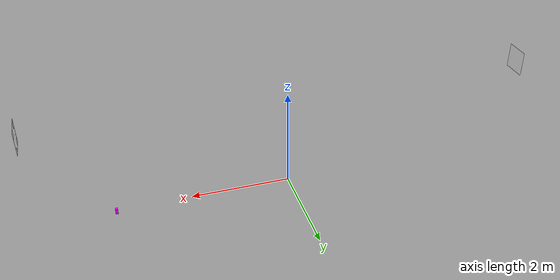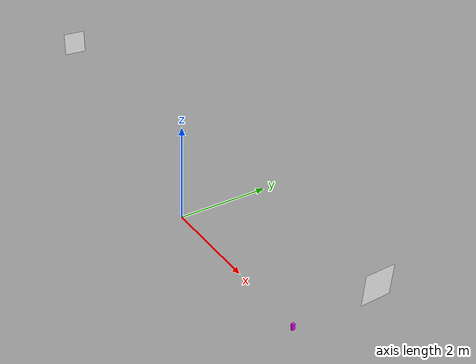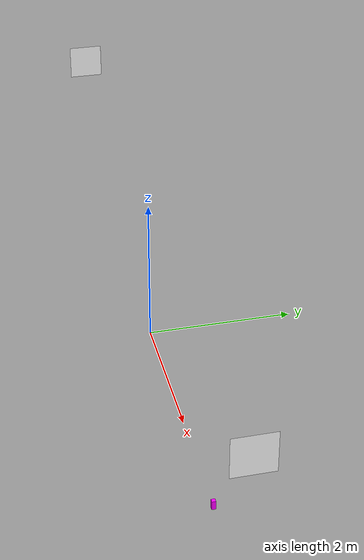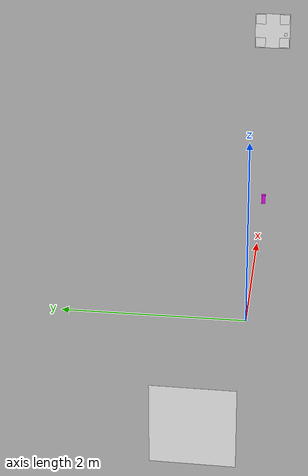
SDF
<sdf version="1.9">
 <world name="default">
  <plugin filename="gz-sim-physics-system" name="gz::sim::systems::Physics"/>
  <plugin filename="gz-sim-user-commands-system" name="gz::sim::systems::UserCommands"/>
  <plugin filename="gz-sim-scene-broadcaster-system" name="gz::sim::systems::SceneBroadcaster"/>
  <plugin filename="gz-sim-sensors-system" name="gz::sim::systems::Sensors">
   <render_engine>ogre2</render_engine>
  </plugin>
  <plugin filename="gz-sim-imu-system" name="gz::sim::systems::Imu"/>
  <plugin filename="gz-sim-navsat-system" name="gz::sim::systems::NavSat"/>
  <plugin filename="gz-sim-air-pressure-system" name="gz::sim::systems::AirPressure"/>
  <plugin filename="gz-sim-magnetometer-system" name="gz::sim::systems::Magnetometer"/>
  <magnetic_field>6.0e-06 2.3e-05 -4.2e-05</magnetic_field>
  <atmosphere type="adiabatic"/>
  <spherical_coordinates>
   <surface_model>EARTH_WGS84</surface_model>
   <latitude_deg>37.5</latitude_deg>
   <longitude_deg>126.9</longitude_deg>
   <elevation>0.0</elevation>
  </spherical_coordinates>
  <physics type="ode">
   <max_step_size>0.004</max_step_size>
   <real_time_factor>1.0</real_time_factor>
   <real_time_update_rate>250</real_time_update_rate>
  </physics>
  <gravity>0 0 -9.8</gravity>
  <scene>
   <grid>false</grid>
   <ambient>0.6 0.6 0.6 1</ambient>
   <background>0.3 0.3 0.3 1</background>
   <shadows>false</shadows>
  </scene>
  <model name="invisible_floor">
   <static>true</static>
   <pose>0 0 -0.1 0 0 0</pose>
   <link name="link">
    <collision name="collision">
     <geometry><plane><normal>0 0 1</normal><size>100 100</size></plane></geometry>
    </collision>
   </link>
  </model>
  <light name="sunUTC" type="directional">
   <pose>0 0 500 0 -0 0</pose>
   <cast_shadows>false</cast_shadows>
   <intensity>1</intensity>
   <direction>0.001 0.625 -0.78</direction>
   <diffuse>0.904 0.904 0.904 1</diffuse>
   <specular>0.271 0.271 0.271 1</specular>
  </light>
  <include><uri>model://arucotag</uri><name>marker_0</name><pose>5.0 0 2.0 0 1.57 3.14</pose></include>
  <include><uri>model://arucotag_1</uri><name>marker_1</name><pose>-5.0 0 2.0 0 1.57 0</pose></include>
  <model name="target_box">
   <pose>3.5 0 0 0 0 0</pose>
   <link name="box_link">
    <inertial><mass>0.05</mass><inertia><ixx>0.0001</ixx><iyy>0.0001</iyy><izz>0.0001</izz></inertia></inertial>
    <collision name="collision">
     <geometry><box><size>0.05 0.05 0.12</size></box></geometry>
     <surface><friction><ode><mu>2.0</mu><mu2>2.0</mu2></ode></friction></surface>
    </collision>
    <visual name="visual">
     <geometry><box><size>0.05 0.05 0.12</size></box></geometry>
     <material><ambient>1 0 1 1</ambient><diffuse>1 0 1 1</diffuse></material>
    </visual>
   </link>
  </model>
 </world>
</sdf>

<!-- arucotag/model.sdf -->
<sdf version='1.9'>
  <model name='arucotag'>
    <static>true</static>
    <pose>0 0 0.001 0 0 0</pose>
    <link name='base'>
      <visual name='background_visual'>
        <geometry>
          <plane>
            <normal>0 0 1</normal>
            <size>0.5 0.5</size>
          </plane>
        </geometry>
        <material>
          <diffuse>1 1 1 1</diffuse>
          <specular>0.2 0.2 0.2 1</specular>
        </material>
      </visual>
      <visual name='tag_0_visual'>
        <pose>0.17 0.17 0.0002 0 0 0</pose>
        <geometry>
          <plane>
            <normal>0 0 1</normal>
            <size>0.14 0.14</size>
          </plane>
        </geometry>
        <material>
          <diffuse>1 1 1 1</diffuse>
          <specular>0.4 0.4 0.4 1</specular>
          <pbr>
            <metal>
              <albedo_map>model://arucotag/aruco_0.png</albedo_map>
            </metal>
          </pbr>
        </material>
      </visual>
      <visual name='tag_1_visual'>
        <pose>-0.17 0.17 0.0002 0 0 0</pose>
        <geometry>
          <plane>
            <normal>0 0 1</normal>
            <size>0.14 0.14</size>
          </plane>
        </geometry>
        <material>
          <diffuse>1 1 1 1</diffuse>
          <specular>0.4 0.4 0.4 1</specular>
          <pbr>
            <metal>
              <albedo_map>model://arucotag/aruco_1.png</albedo_map>
            </metal>
          </pbr>
        </material>
      </visual>
      <visual name='tag_2_visual'>
        <pose>-0.17 -0.17 0.0002 0 0 0</pose>
        <geometry>
          <plane>
            <normal>0 0 1</normal>
            <size>0.14 0.14</size>
          </plane>
        </geometry>
        <material>
          <diffuse>1 1 1 1</diffuse>
          <specular>0.4 0.4 0.4 1</specular>
          <pbr>
            <metal>
              <albedo_map>model://arucotag/aruco_2.png</albedo_map>
            </metal>
          </pbr>
        </material>
      </visual>
      <visual name='tag_3_visual'>
        <pose>0.17 -0.17 0.0002 0 0 0</pose>
        <geometry>
          <plane>
            <normal>0 0 1</normal>
            <size>0.14 0.14</size>
          </plane>
        </geometry>
        <material>
          <diffuse>1 1 1 1</diffuse>
          <specular>0.4 0.4 0.4 1</specular>
          <pbr>
            <metal>
              <albedo_map>model://arucotag/aruco_3.png</albedo_map>
            </metal>
          </pbr>
        </material>
      </visual>
      <visual name='tag_4_visual'>
        <pose>0.0 0.11 0.0002 0 0 0</pose>
        <geometry>
          <plane>
            <normal>0 0 1</normal>
            <size>0.07 0.07</size>
          </plane>
        </geometry>
        <material>
          <diffuse>1 1 1 1</diffuse>
          <specular>0.4 0.4 0.4 1</specular>
          <pbr>
            <metal>
              <albedo_map>model://arucotag/aruco_4.png</albedo_map>
            </metal>
          </pbr>
        </material>
      </visual>
      <visual name='tag_5_visual'>
        <pose>-0.11 0.0 0.0002 0 0 0</pose>
        <geometry>
          <plane>
            <normal>0 0 1</normal>
            <size>0.07 0.07</size>
          </plane>
        </geometry>
        <material>
          <diffuse>1 1 1 1</diffuse>
          <specular>0.4 0.4 0.4 1</specular>
          <pbr>
            <metal>
              <albedo_map>model://arucotag/aruco_5.png</albedo_map>
            </metal>
          </pbr>
        </material>
      </visual>
      <visual name='tag_6_visual'>
        <pose>0.0 -0.11 0.0002 0 0 0</pose>
        <geometry>
          <plane>
            <normal>0 0 1</normal>
            <size>0.07 0.07</size>
          </plane>
        </geometry>
        <material>
          <diffuse>1 1 1 1</diffuse>
          <specular>0.4 0.4 0.4 1</specular>
          <pbr>
            <metal>
              <albedo_map>model://arucotag/aruco_6.png</albedo_map>
            </metal>
          </pbr>
        </material>
      </visual>
      <visual name='tag_7_visual'>
        <pose>0.11 0.0 0.0002 0 0 0</pose>
        <geometry>
          <plane>
            <normal>0 0 1</normal>
            <size>0.07 0.07</size>
          </plane>
        </geometry>
        <material>
          <diffuse>1 1 1 1</diffuse>
          <specular>0.4 0.4 0.4 1</specular>
          <pbr>
            <metal>
              <albedo_map>model://arucotag/aruco_7.png</albedo_map>
            </metal>
          </pbr>
        </material>
      </visual>
      <visual name='tag_8_visual'>
        <pose>0.0 0.045 0.0002 0 0 0</pose>
        <geometry>
          <plane>
            <normal>0 0 1</normal>
            <size>0.025 0.025</size>
          </plane>
        </geometry>
        <material>
          <diffuse>1 1 1 1</diffuse>
          <specular>0.4 0.4 0.4 1</specular>
          <pbr>
            <metal>
              <albedo_map>model://arucotag/aruco_8.png</albedo_map>
            </metal>
          </pbr>
        </material>
      </visual>
      <visual name='tag_9_visual'>
        <pose>-0.045 0.0 0.0002 0 0 0</pose>
        <geometry>
          <plane>
            <normal>0 0 1</normal>
            <size>0.025 0.025</size>
          </plane>
        </geometry>
        <material>
          <diffuse>1 1 1 1</diffuse>
          <specular>0.4 0.4 0.4 1</specular>
          <pbr>
            <metal>
              <albedo_map>model://arucotag/aruco_9.png</albedo_map>
            </metal>
          </pbr>
        </material>
      </visual>
      <visual name='tag_10_visual'>
        <pose>0.0 -0.045 0.0002 0 0 0</pose>
        <geometry>
          <plane>
            <normal>0 0 1</normal>
            <size>0.025 0.025</size>
          </plane>
        </geometry>
        <material>
          <diffuse>1 1 1 1</diffuse>
          <specular>0.4 0.4 0.4 1</specular>
          <pbr>
            <metal>
              <albedo_map>model://arucotag/aruco_10.png</albedo_map>
            </metal>
          </pbr>
        </material>
      </visual>
      <visual name='tag_11_visual'>
        <pose>0.045 0.0 0.0002 0 0 0</pose>
        <geometry>
          <plane>
            <normal>0 0 1</normal>
            <size>0.025 0.025</size>
          </plane>
        </geometry>
        <material>
          <diffuse>1 1 1 1</diffuse>
          <specular>0.4 0.4 0.4 1</specular>
          <pbr>
            <metal>
              <albedo_map>model://arucotag/aruco_11.png</albedo_map>
            </metal>
          </pbr>
        </material>
      </visual>
      <visual name='tag_12_visual'>
        <pose>0.0 0.0 0.0002 0 0 0</pose>
        <geometry>
          <plane>
            <normal>0 0 1</normal>
            <size>0.018 0.018</size>
          </plane>
        </geometry>
        <material>
          <diffuse>1 1 1 1</diffuse>
          <specular>0.4 0.4 0.4 1</specular>
          <pbr>
            <metal>
              <albedo_map>model://arucotag/aruco_12.png</albedo_map>
            </metal>
          </pbr>
        </material>
      </visual>
      <!-- Small, flat drawing of the positive board axes.  It sits in the
           marker-free gap between the two large +Y-side tags. -->
      <visual name='board_positive_axes_drawing'>
        <pose>0.045 0.190 0.0005 0 0 0</pose>
        <geometry>
          <plane>
            <normal>0 0 1</normal>
            <size>0.042 0.042</size>
          </plane>
        </geometry>
        <material>
          <diffuse>1 1 1 1</diffuse>
          <specular>0 0 0 1</specular>
          <pbr>
            <metal>
              <albedo_map>model://arucotag/board_axes_xy.png</albedo_map>
            </metal>
          </pbr>
        </material>
      </visual>
    </link>
  </model>
</sdf>

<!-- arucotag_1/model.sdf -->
<sdf version='1.9'>
  <model name='arucotag_1'>
    <static>true</static>
    <pose>0 0 0.001 0 0 0</pose>
    <link name='base'>
      <visual name='base_visual'>
        <geometry>
          <plane>
            <normal>0 0 1</normal>
            <size>0.5 0.5</size>
          </plane>
        </geometry>
        <material>
          <diffuse>1 1 1 1</diffuse>
          <specular>0.4 0.4 0.4 1</specular>
          <pbr>
            <metal>
              <albedo_map>model://arucotag_1/arucotag_1.png</albedo_map>
            </metal>
          </pbr>
        </material>
      </visual>
    </link>
  </model>
</sdf>
